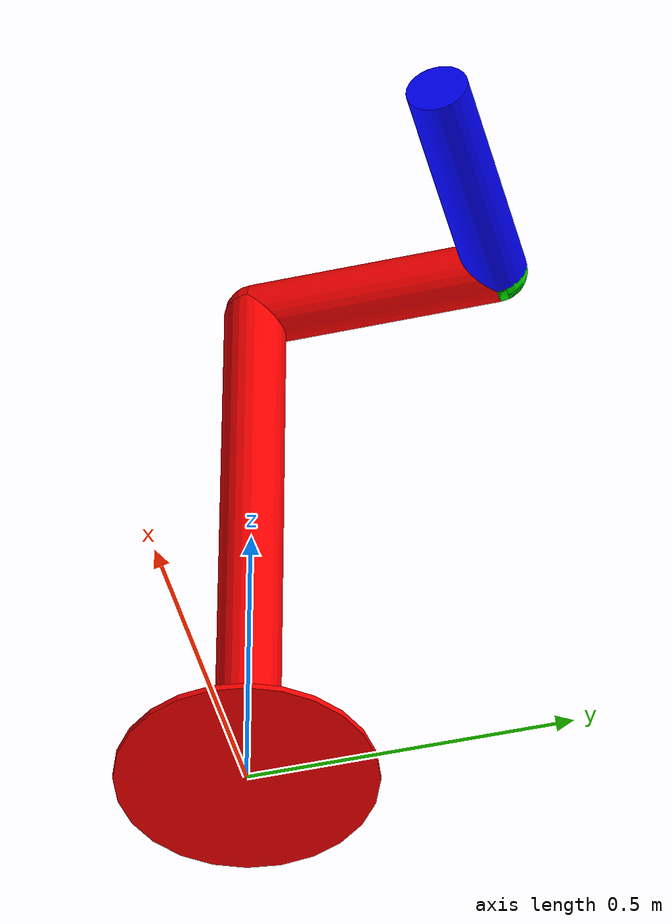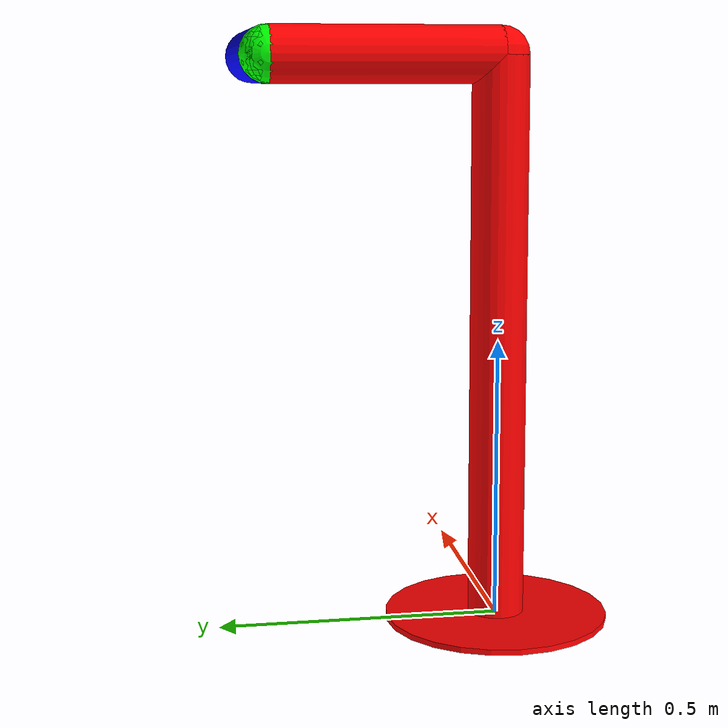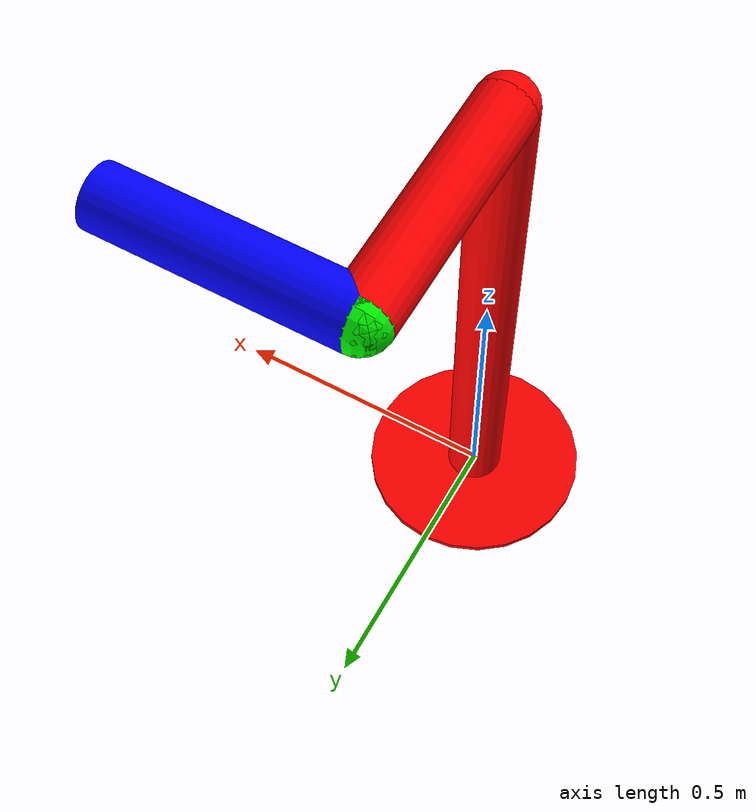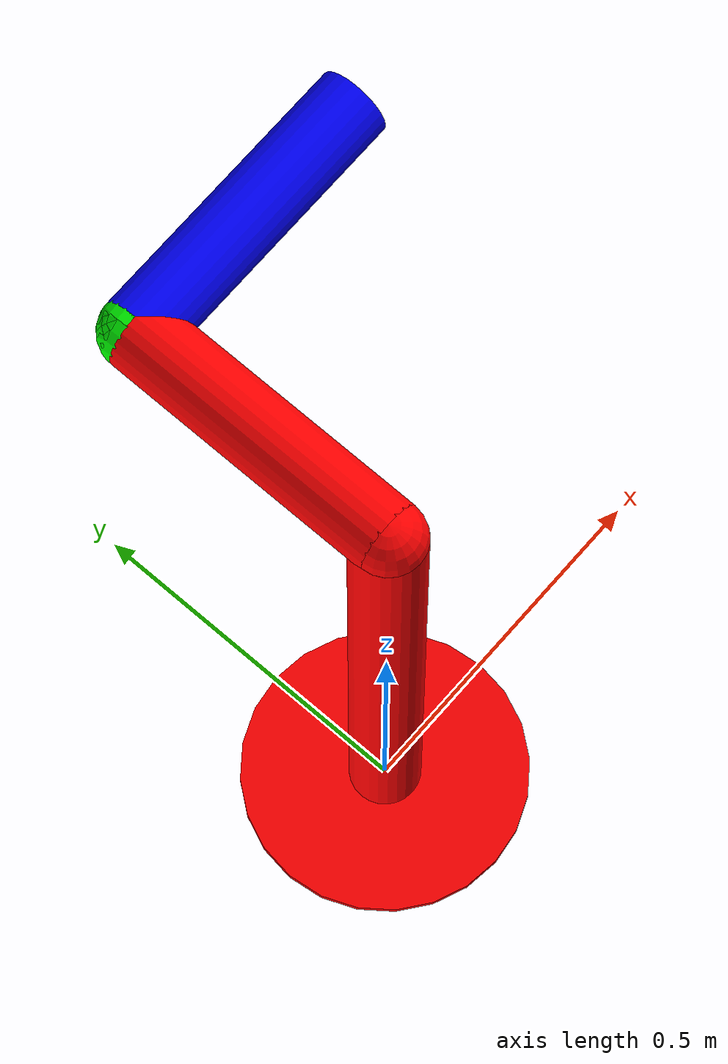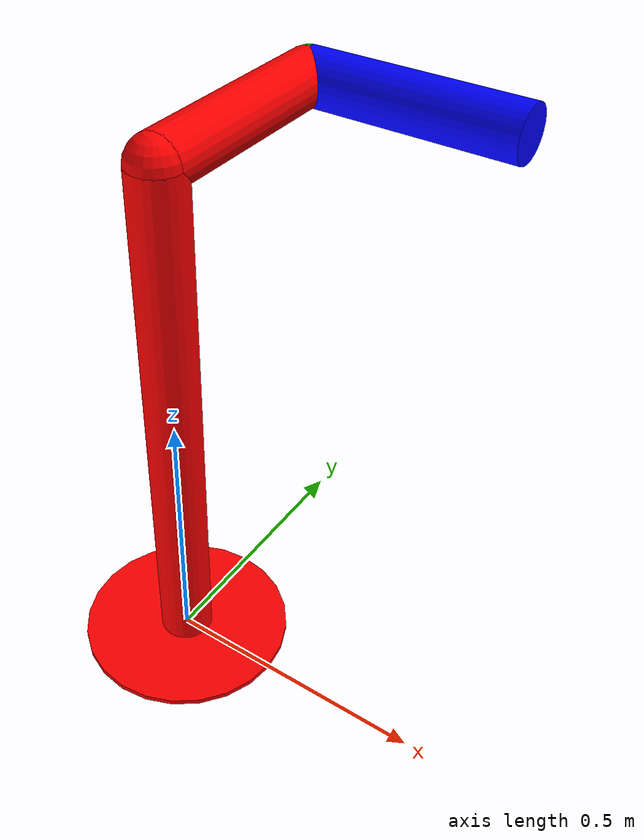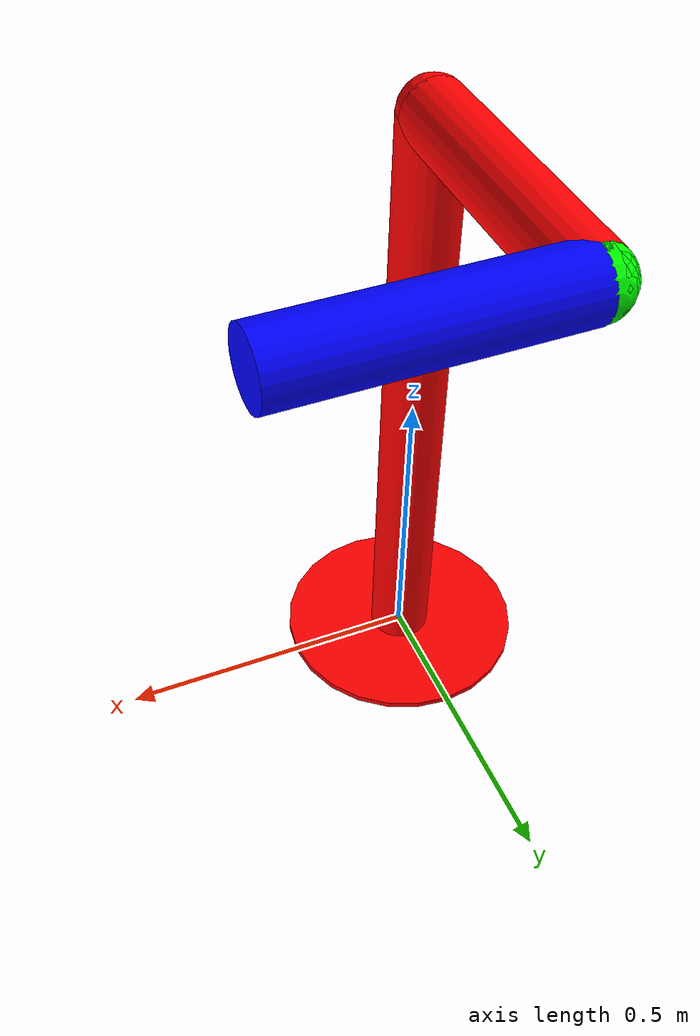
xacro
<?xml version="1.0"?>
<robot xmlns:xacro="http://www.ros.org/wiki/xacro" name="arm_model">

    <!-- Define some constants -->
    <xacro:property name="link_length" value="1.0"/>
    <xacro:property name="link_length_2" value="0.4"/>
    <xacro:property name="link_radius_2" value="0.05"/>

    <xacro:property name="link_radius" value="0.1"/>
    <xacro:property name="joint_radius" value="0.2"/>
    <xacro:property name="joint_length" value="0.1"/>

    <xacro:property name="pi" value="3.141592653589793"/>
    <xacro:property name="half_pi" value="1.5707963267948966"/>

    <material name="blue">
        <color rgba="0 0 1 1"/>
    </material>
    <material name="green">
        <color rgba="0 1 0 1"/>
    </material>
    <material name="red">
        <color rgba="1 0 0 1"/>
    </material>

    <!-- Base link -->
    <link name="base_link">
        <visual>
        <geometry>
            <cylinder length="0.01" radius="0.2"/>
        </geometry>
        <origin rpy="0 0 0" xyz="0 0 0"/>
        <material name="red" />
        </visual>
    </link>

    <!-- Base to torso joint -->
    <joint name="base_torso_joint" type="fixed">
        <origin xyz="0 0 ${link_length/2.0}" rpy="0 0 0"/>
        <parent link="base_link"/>
        <child link="torso_link"/>
        <axis xyz="0 0 1"/>
    </joint>

    <!-- Torso link -->
    <link name="torso_link">
        <visual>
            <geometry>
                <cylinder length="${link_length}" radius="${link_radius_2}"/>
            </geometry>
            <material name="red"/>
        </visual>
    </link>

    <!-- Torso to Torso Reference joint -->
    <joint name="torso_torsoref_joint" type="fixed">
        <origin xyz="0 0 ${link_length/2.0}" rpy="0 0 0"/>
        <parent link="torso_link"/>
        <child link="torsoref_link"/>
        <axis xyz="0 1 0"/>
    </joint>

    <!-- Torso Reference link -->
    <link name="torsoref_link">
        <visual>
            <geometry>
                <sphere radius="${link_radius_2}"/>
            </geometry>
            <material name="red"/>
        </visual>
    </link>

    <!-- Torso to Trapezoidal joint -->
    <joint name="torso_trapezoidal_joint" type="fixed">
        <origin xyz="0 ${link_length_2/2.0} 0" rpy="-${half_pi} 0 0"/>
        <parent link="torsoref_link"/>
        <child link="trapezoidal_link"/>
        <axis xyz="0 1 0"/>
    </joint>

    <!-- Trapezoidal link -->
    <link name="trapezoidal_link">
        <visual>
            <geometry>
                <cylinder length="${link_length_2}" radius="${link_radius_2}"/>
            </geometry>
            <material name="red"/>
        </visual>
    </link>

    <!-- Trapezoidal to Trapezoidal Reference joint -->
    <joint name="trapezoidal_trapezoidalref_joint" type="fixed">
        <origin xyz="0 0 ${link_length_2/2.0}" rpy="0 0 0"/>
        <parent link="trapezoidal_link"/>
        <child link="trapezoidalref_link"/>
        <axis xyz="0 0 1"/>
    </joint>

    <!-- Trapezoidal Reference link -->
    <link name="trapezoidalref_link">
        <visual>
            <geometry>
                <sphere radius="${link_radius_2}"/>
            </geometry>
            <material name="green"/>
        </visual>
    </link>

    <!-- Trapezoidal to Upper Arm joint -->
    <joint name="shoulder_1_joint" type="revolute">
        <origin xyz="0 0 0" rpy="0 ${half_pi} 0"/>
        <parent link="trapezoidalref_link"/>
        <child link="upperarm_1_link"/>
        <axis xyz="1 0 0"/>
        <limit lower="-${pi}" upper="${pi}" effort="100" velocity="0.1"/>
    </joint>

    <!-- Upper Arm 1 Link -->
    <link name="upperarm_1_link">
        <visual>
            <geometry>
                <sphere radius="${link_radius_2}"/>
            </geometry>
            <origin rpy="0 0 0" xyz="0 0 0"/>
            <material name="green"/>
        </visual>
    </link>

    <!-- Upper Arm 1 to Upper Arm 2 joint -->
    <joint name="shoulder_2_joint" type="revolute">
        <origin xyz="0 0 0" rpy="0 0 0"/>
        <parent link="upperarm_1_link"/>
        <child link="upperarm_2_link"/>
        <axis xyz="0 1 0"/>
        <limit lower="-${pi}" upper="${pi}" effort="100" velocity="0.1"/>
    </joint>

    <!-- Upper Arm 2 Link -->
    <link name="upperarm_2_link">
        <visual>
            <geometry>
                <sphere radius="${link_radius_2}"/>
            </geometry>
            <origin rpy="0 0 0" xyz="0 0 0"/>
            <material name="green"/>

        </visual>
    </link>

    <!-- Upper Arm 2 to Upper Arm 3 joint -->
    <joint name="shoulder_3_joint" type="revolute">
        <origin xyz="0 0 0" rpy="0 0 0"/>
        <parent link="upperarm_2_link"/>
        <child link="upperarm_3_link"/>
        <axis xyz="0 0 1"/>
        <limit lower="-${pi}" upper="${pi}" effort="100" velocity="0.1"/>
    </joint>

     <!-- Upper Arm link  -->
    <link name="upperarm_3_link">
        <visual>
            <geometry>
                <cylinder length="${link_length_2}" radius="${link_radius_2}"/>
            </geometry>
            <material name="blue"/>
            <origin rpy="0 0 0" xyz="0 0 ${link_length_2/2.0}"/>
        </visual>
    </link>

</robot>
